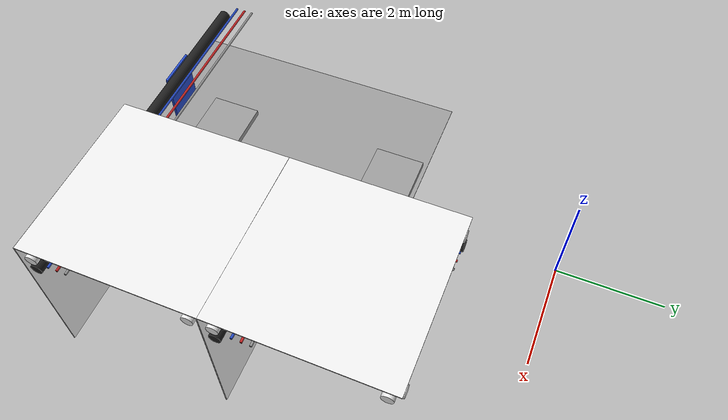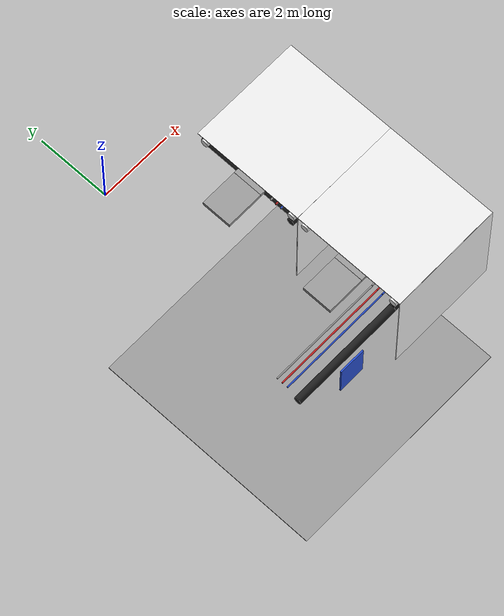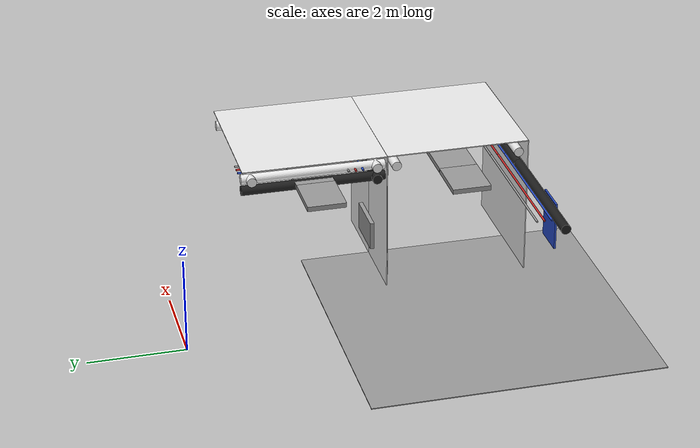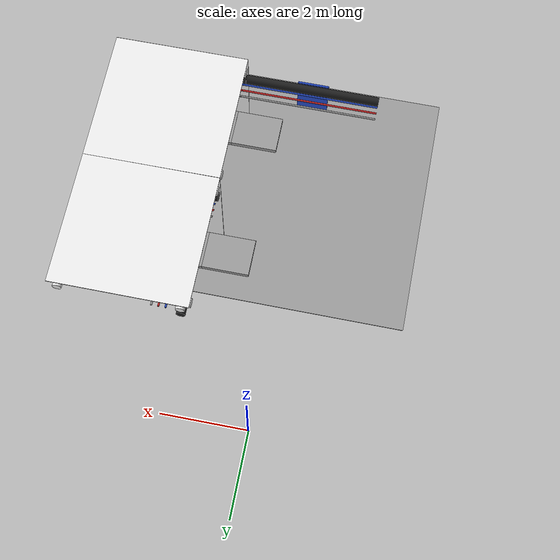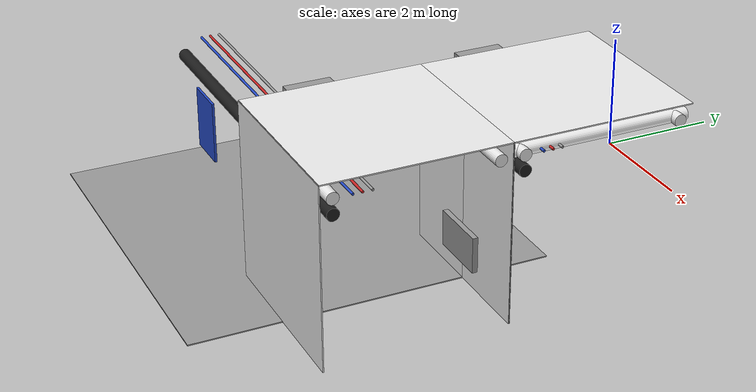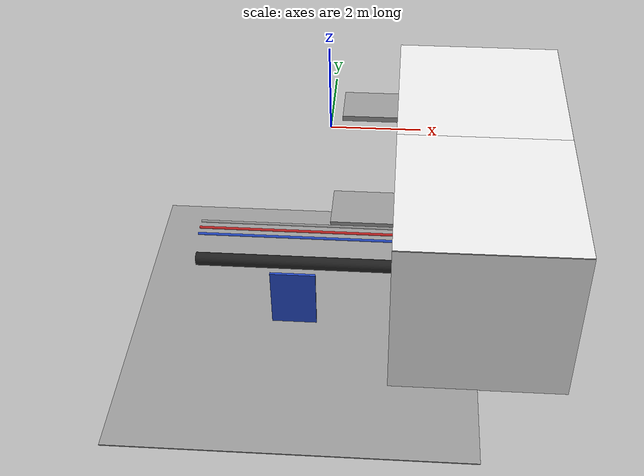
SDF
<sdf version="1.6">
 <world name="default">
  <model name="wall_front_1_-1_0_2">
   <static>1</static>
   <pose>3.0 -4.5 1.5 0.0 0.0 3.14</pose>
   <link name="link">
    <collision name="collision"><geometry><box><size>3.0 0.02 3.0</size></box></geometry></collision>
    <visual name="visual">
     <material>
      <script><name>Gazebo/White</name><uri>file://media/materials/scripts/gazebo.material</uri></script>
     </material>
     <geometry><box><size>3.0 0.02 3.0</size></box></geometry>
    </visual>
   </link>
  </model>
  <model name="wall_top_1_-1_0_2">
   <static>1</static>
   <pose>3.0 -3.0 3.0 1.57 0.0 3.14</pose>
   <link name="link">
    <collision name="collision"><geometry><box><size>3.0 0.02 3.0</size></box></geometry></collision>
    <visual name="visual">
     <material>
      <script><name>Gazebo/White</name><uri>file://media/materials/scripts/gazebo.material</uri></script>
     </material>
     <geometry><box><size>3.0 0.02 3.0</size></box></geometry>
    </visual>
   </link>
  </model>
  <model name="ceiling_1_1_-1_1_2">
   <pose>2.0 -3.0 2.55 0.0 0.0 4.71</pose>
   <link name="link_1">
    <visual name="visual">
     <geometry><box><size>0.8 1 0.1</size></box></geometry>
     <material>
      <script><uri>file://media/materials/scripts/gazebo.material</uri><name>Gazebo/Grey</name></script>
     </material>
    </visual>
    <collision name="collision"><geometry><box><size>0.8 1 0.1</size></box></geometry></collision>
   </link>
   <static>1</static>
  </model>
  <model name="white_pipe_left_1_-1_0_2">
   <static>1</static>
   <pose>3.0 -3.0 2.76 0.0 0.0 3.14</pose>
   <link name="link_0">
    <visual name="visual">
     <pose>-1.3 0 0 1.57 0 0</pose>
     <geometry><cylinder><radius>0.1</radius><length>3.0</length></cylinder></geometry>
     <material>
      <script><uri>file://media/materials/scripts/gazebo.material</uri><name>Gazebo/White</name></script>
     </material>
    </visual>
    <collision name="collision">
     <pose>-1.3 0 0 1.57 0 0</pose>
     <geometry><cylinder><radius>0.1</radius><length>3.0</length></cylinder></geometry>
    </collision>
   </link>
  </model>
  <model name="white_pipe_right_1_-1_0_2">
   <static>1</static>
   <pose>3.0 -3.0 2.76 0.0 0.0 3.14</pose>
   <link name="link_0">
    <visual name="visual">
     <pose>1.3 0 0 1.57 0 0</pose>
     <geometry><cylinder><radius>0.1</radius><length>3.0</length></cylinder></geometry>
     <material>
      <script><uri>file://media/materials/scripts/gazebo.material</uri><name>Gazebo/White</name></script>
     </material>
    </visual>
    <collision name="collision">
     <pose>1.3 0 0 1.57 0 0</pose>
     <geometry><cylinder><radius>0.1</radius><length>3.0</length></cylinder></geometry>
    </collision>
   </link>
  </model>
  <model name="black_pipe_right_1_-1_0_2">
   <static>1</static>
   <pose>3.0 -3.0 2.76 0.0 0.0 3.14</pose>
   <link name="link_0">
    <visual name="visual">
     <pose>1.3 0 -0.25 1.57 0 0</pose>
     <geometry><cylinder><radius>0.1</radius><length>3.0</length></cylinder></geometry>
     <material>
      <script><uri>file://media/materials/scripts/gazebo.material</uri><name>Gazebo/Black</name></script>
     </material>
    </visual>
    <collision name="collision">
     <pose>1.3 0 -0.25 1.57 0 0</pose>
     <geometry><cylinder><radius>0.1</radius><length>3.0</length></cylinder></geometry>
    </collision>
   </link>
  </model>
  <model name="grey_pipe_right_1_-1_0_2">
   <static>1</static>
   <pose>3.0 -3.0 2.76 0.0 0.0 3.14</pose>
   <link name="link_0">
    <visual name="visual">
     <pose>0.7 0 0 1.57 0 0</pose>
     <geometry><cylinder><radius>0.02</radius><length>3.0</length></cylinder></geometry>
     <material>
      <script><uri>file://media/materials/scripts/gazebo.material</uri><name>Gazebo/Grey</name></script>
     </material>
    </visual>
    <collision name="collision">
     <pose>0.7 0 0 1.57 0 0</pose>
     <geometry><cylinder><radius>0.02</radius><length>3.0</length></cylinder></geometry>
    </collision>
   </link>
  </model>
  <model name="red_pipe_right_1_-1_0_2">
   <static>1</static>
   <pose>3.0 -3.0 2.76 0.0 0.0 3.14</pose>
   <link name="link_0">
    <visual name="visual">
     <pose>0.85 0 0 1.57 0 0</pose>
     <geometry><cylinder><radius>0.02</radius><length>3.0</length></cylinder></geometry>
     <material>
      <script><uri>file://media/materials/scripts/gazebo.material</uri><name>Gazebo/Red</name></script>
     </material>
    </visual>
    <collision name="collision">
     <pose>0.85 0 0 1.57 0 0</pose>
     <geometry><cylinder><radius>0.02</radius><length>3.0</length></cylinder></geometry>
    </collision>
   </link>
  </model>
  <model name="blue_pipe_right_1_-1_0_2">
   <static>1</static>
   <pose>3.0 -3.0 2.76 0.0 0.0 3.14</pose>
   <link name="link_0">
    <visual name="visual">
     <pose>1 0 0 1.57 0 0</pose>
     <geometry><cylinder><radius>0.02</radius><length>3.0</length></cylinder></geometry>
     <material>
      <script><uri>file://media/materials/scripts/gazebo.material</uri><name>Gazebo/Blue</name></script>
     </material>
    </visual>
    <collision name="collision">
     <pose>1 0 0 1.57 0 0</pose>
     <geometry><cylinder><radius>0.02</radius><length>3.0</length></cylinder></geometry>
    </collision>
   </link>
  </model>
  <model name="white_pipe_left_1_1_-1_0_2">
   <static>1</static>
   <pose>3.0 -3.0 2.76 0.0 0.0 4.71</pose>
   <link name="link_0">
    <visual name="visual">
     <pose>-1.3 0 0 1.57 0 0</pose>
     <geometry><cylinder><radius>0.1</radius><length>3.0</length></cylinder></geometry>
     <material>
      <script><uri>file://media/materials/scripts/gazebo.material</uri><name>Gazebo/White</name></script>
     </material>
    </visual>
    <collision name="collision">
     <pose>-1.3 0 0 1.57 0 0</pose>
     <geometry><cylinder><radius>0.1</radius><length>3.0</length></cylinder></geometry>
    </collision>
   </link>
  </model>
  <model name="white_pipe_right_1_1_-1_0_2">
   <static>1</static>
   <pose>3.0 -3.0 2.76 0.0 0.0 4.71</pose>
   <link name="link_0">
    <visual name="visual">
     <pose>1.3 0 0 1.57 0 0</pose>
     <geometry><cylinder><radius>0.1</radius><length>3.0</length></cylinder></geometry>
     <material>
      <script><uri>file://media/materials/scripts/gazebo.material</uri><name>Gazebo/White</name></script>
     </material>
    </visual>
    <collision name="collision">
     <pose>1.3 0 0 1.57 0 0</pose>
     <geometry><cylinder><radius>0.1</radius><length>3.0</length></cylinder></geometry>
    </collision>
   </link>
  </model>
  <model name="black_pipe_right_1_1_-1_0_2">
   <static>1</static>
   <pose>3.0 -3.0 2.76 0.0 0.0 4.71</pose>
   <link name="link_0">
    <visual name="visual">
     <pose>1.3 0 -0.25 1.57 0 0</pose>
     <geometry><cylinder><radius>0.1</radius><length>3.0</length></cylinder></geometry>
     <material>
      <script><uri>file://media/materials/scripts/gazebo.material</uri><name>Gazebo/Black</name></script>
     </material>
    </visual>
    <collision name="collision">
     <pose>1.3 0 -0.25 1.57 0 0</pose>
     <geometry><cylinder><radius>0.1</radius><length>3.0</length></cylinder></geometry>
    </collision>
   </link>
  </model>
  <model name="grey_pipe_right_1_1_-1_0_2">
   <static>1</static>
   <pose>3.0 -3.0 2.76 0.0 0.0 4.71</pose>
   <link name="link_0">
    <visual name="visual">
     <pose>0.7 0 0 1.57 0 0</pose>
     <geometry><cylinder><radius>0.02</radius><length>3.0</length></cylinder></geometry>
     <material>
      <script><uri>file://media/materials/scripts/gazebo.material</uri><name>Gazebo/Grey</name></script>
     </material>
    </visual>
    <collision name="collision">
     <pose>0.7 0 0 1.57 0 0</pose>
     <geometry><cylinder><radius>0.02</radius><length>3.0</length></cylinder></geometry>
    </collision>
   </link>
  </model>
  <model name="red_pipe_right_1_1_-1_0_2">
   <static>1</static>
   <pose>3.0 -3.0 2.76 0.0 0.0 4.71</pose>
   <link name="link_0">
    <visual name="visual">
     <pose>0.85 0 0 1.57 0 0</pose>
     <geometry><cylinder><radius>0.02</radius><length>3.0</length></cylinder></geometry>
     <material>
      <script><uri>file://media/materials/scripts/gazebo.material</uri><name>Gazebo/Red</name></script>
     </material>
    </visual>
    <collision name="collision">
     <pose>0.85 0 0 1.57 0 0</pose>
     <geometry><cylinder><radius>0.02</radius><length>3.0</length></cylinder></geometry>
    </collision>
   </link>
  </model>
  <model name="blue_pipe_right_1_1_-1_0_2">
   <static>1</static>
   <pose>3.0 -3.0 2.76 0.0 0.0 4.71</pose>
   <link name="link_0">
    <visual name="visual">
     <pose>1 0 0 1.57 0 0</pose>
     <geometry><cylinder><radius>0.02</radius><length>3.0</length></cylinder></geometry>
     <material>
      <script><uri>file://media/materials/scripts/gazebo.material</uri><name>Gazebo/Blue</name></script>
     </material>
    </visual>
    <collision name="collision">
     <pose>1 0 0 1.57 0 0</pose>
     <geometry><cylinder><radius>0.02</radius><length>3.0</length></cylinder></geometry>
    </collision>
   </link>
  </model>
  <model name="panel_1_-1_0_2">
   <static>1</static>
   <pose>3.0 -4.5 0.66 0.0 0.0 4.71</pose>
   <link name="link">
    <collision name="collision"><geometry><box><size>0.2 1 0.6</size></box></geometry></collision>
    <visual name="visual">
     <material>
      <script><name>Gazebo/Grey</name><uri>file://media/materials/scripts/gazebo.material</uri></script>
     </material>
     <geometry><box><size>0.2 1 0.6</size></box></geometry>
    </visual>
   </link>
  </model>
  <model name="ceiling_1_0_-1_0_3">
   <pose>1.0 -3.0 2.55 0.0 0.0 1.57</pose>
   <link name="link_1">
    <visual name="visual">
     <geometry><box><size>0.8 1 0.1</size></box></geometry>
     <material>
      <script><uri>file://media/materials/scripts/gazebo.material</uri><name>Gazebo/Grey</name></script>
     </material>
    </visual>
    <collision name="collision"><geometry><box><size>0.8 1 0.1</size></box></geometry></collision>
   </link>
   <static>1</static>
  </model>
  <model name="ceiling_1_0_-2_1_3">
   <pose>1.0 -6.0 2.55 0.0 0.0 4.71</pose>
   <link name="link_1">
    <visual name="visual">
     <geometry><box><size>0.8 1 0.1</size></box></geometry>
     <material>
      <script><uri>file://media/materials/scripts/gazebo.material</uri><name>Gazebo/Grey</name></script>
     </material>
    </visual>
    <collision name="collision"><geometry><box><size>0.8 1 0.1</size></box></geometry></collision>
   </link>
   <static>1</static>
  </model>
  <model name="black_pipe_right_1_0_-2_0_3">
   <static>1</static>
   <pose>0.0 -6.0 2.76 0.0 0.0 4.71</pose>
   <link name="link_0">
    <visual name="visual">
     <pose>1.3 0 -0.25 1.57 0 0</pose>
     <geometry><cylinder><radius>0.1</radius><length>3.0</length></cylinder></geometry>
     <material>
      <script><uri>file://media/materials/scripts/gazebo.material</uri><name>Gazebo/Black</name></script>
     </material>
    </visual>
    <collision name="collision">
     <pose>1.3 0 -0.25 1.57 0 0</pose>
     <geometry><cylinder><radius>0.1</radius><length>3.0</length></cylinder></geometry>
    </collision>
   </link>
  </model>
  <model name="grey_pipe_right_1_0_-2_0_3">
   <static>1</static>
   <pose>0.0 -6.0 2.76 0.0 0.0 4.71</pose>
   <link name="link_0">
    <visual name="visual">
     <pose>0.7 0 0 1.57 0 0</pose>
     <geometry><cylinder><radius>0.02</radius><length>3.0</length></cylinder></geometry>
     <material>
      <script><uri>file://media/materials/scripts/gazebo.material</uri><name>Gazebo/Grey</name></script>
     </material>
    </visual>
    <collision name="collision">
     <pose>0.7 0 0 1.57 0 0</pose>
     <geometry><cylinder><radius>0.02</radius><length>3.0</length></cylinder></geometry>
    </collision>
   </link>
  </model>
  <model name="red_pipe_right_1_0_-2_0_3">
   <static>1</static>
   <pose>0.0 -6.0 2.76 0.0 0.0 4.71</pose>
   <link name="link_0">
    <visual name="visual">
     <pose>0.85 0 0 1.57 0 0</pose>
     <geometry><cylinder><radius>0.02</radius><length>3.0</length></cylinder></geometry>
     <material>
      <script><uri>file://media/materials/scripts/gazebo.material</uri><name>Gazebo/Red</name></script>
     </material>
    </visual>
    <collision name="collision">
     <pose>0.85 0 0 1.57 0 0</pose>
     <geometry><cylinder><radius>0.02</radius><length>3.0</length></cylinder></geometry>
    </collision>
   </link>
  </model>
  <model name="blue_pipe_right_1_0_-2_0_3">
   <static>1</static>
   <pose>0.0 -6.0 2.76 0.0 0.0 4.71</pose>
   <link name="link_0">
    <visual name="visual">
     <pose>1 0 0 1.57 0 0</pose>
     <geometry><cylinder><radius>0.02</radius><length>3.0</length></cylinder></geometry>
     <material>
      <script><uri>file://media/materials/scripts/gazebo.material</uri><name>Gazebo/Blue</name></script>
     </material>
    </visual>
    <collision name="collision">
     <pose>1 0 0 1.57 0 0</pose>
     <geometry><cylinder><radius>0.02</radius><length>3.0</length></cylinder></geometry>
    </collision>
   </link>
  </model>
  <model name="panel_0_-2_0_3">
   <static>1</static>
   <pose>0.0 -7.5 1.95 0.0 0.0 4.71</pose>
   <link name="link">
    <collision name="collision"><geometry><box><size>0.04 0.7 1</size></box></geometry></collision>
    <visual name="visual">
     <material>
      <script><name>Gazebo/Blue</name><uri>file://media/materials/scripts/gazebo.material</uri></script>
     </material>
     <geometry><box><size>0.04 0.7 1</size></box></geometry>
    </visual>
   </link>
  </model>
  <model name="wall_bottom_0_-2_0_3">
   <static>1</static>
   <pose>0.0 -6.0 0.0 0.0 0.0 3.14</pose>
   <link name="link">
    <collision name="collision"><geometry><box><size>6.0 6.0 0.02</size></box></geometry></collision>
    <visual name="visual">
     <material>
      <script><name>Gazebo/Grey</name><uri>file://media/materials/scripts/gazebo.material</uri></script>
     </material>
     <geometry><box><size>6.0 6.0 0.02</size></box></geometry>
    </visual>
   </link>
  </model>
  <model name="wall_right_1_-2_0_1">
   <static>1</static>
   <pose>3.0 -7.5 1.5 0.0 0.0 0.0</pose>
   <link name="link">
    <collision name="collision"><geometry><box><size>3.0 0.02 3.0</size></box></geometry></collision>
    <visual name="visual">
     <material>
      <script><name>Gazebo/White</name><uri>file://media/materials/scripts/gazebo.material</uri></script>
     </material>
     <geometry><box><size>3.0 0.02 3.0</size></box></geometry>
    </visual>
   </link>
  </model>
  <model name="wall_left_1_-2_0_1">
   <static>1</static>
   <pose>3.0 -4.5 1.5 0.0 0.0 0.0</pose>
   <link name="link">
    <collision name="collision"><geometry><box><size>3.0 0.02 3.0</size></box></geometry></collision>
    <visual name="visual">
     <material>
      <script><name>Gazebo/White</name><uri>file://media/materials/scripts/gazebo.material</uri></script>
     </material>
     <geometry><box><size>3.0 0.02 3.0</size></box></geometry>
    </visual>
   </link>
  </model>
  <model name="wall_top_1_-2_0_1">
   <static>1</static>
   <pose>3.0 -6.0 3.0 1.57 0.0 -1.57</pose>
   <link name="link">
    <collision name="collision"><geometry><box><size>3.0 0.02 3.0</size></box></geometry></collision>
    <visual name="visual">
     <material>
      <script><name>Gazebo/White</name><uri>file://media/materials/scripts/gazebo.material</uri></script>
     </material>
     <geometry><box><size>3.0 0.02 3.0</size></box></geometry>
    </visual>
   </link>
  </model>
  <model name="ceiling_1_1_-2_0_1">
   <pose>3.0 -6.0 2.55 0.0 0.0 -1.57</pose>
   <link name="link_1">
    <visual name="visual">
     <geometry><box><size>0.8 1 0.1</size></box></geometry>
     <material>
      <script><uri>file://media/materials/scripts/gazebo.material</uri><name>Gazebo/Grey</name></script>
     </material>
    </visual>
    <collision name="collision"><geometry><box><size>0.8 1 0.1</size></box></geometry></collision>
   </link>
   <static>1</static>
  </model>
  <model name="ceiling_1_1_-2_1_1">
   <pose>2.0 -6.0 2.55 0.0 0.0 -1.57</pose>
   <link name="link_1">
    <visual name="visual">
     <geometry><box><size>0.8 1 0.1</size></box></geometry>
     <material>
      <script><uri>file://media/materials/scripts/gazebo.material</uri><name>Gazebo/Grey</name></script>
     </material>
    </visual>
    <collision name="collision"><geometry><box><size>0.8 1 0.1</size></box></geometry></collision>
   </link>
   <static>1</static>
  </model>
  <model name="white_pipe_left_1_-2_0_1">
   <static>1</static>
   <pose>3.0 -6.0 2.76 0.0 0.0 -1.57</pose>
   <link name="link_0">
    <visual name="visual">
     <pose>-1.3 0 0 1.57 0 0</pose>
     <geometry><cylinder><radius>0.1</radius><length>3.0</length></cylinder></geometry>
     <material>
      <script><uri>file://media/materials/scripts/gazebo.material</uri><name>Gazebo/White</name></script>
     </material>
    </visual>
    <collision name="collision">
     <pose>-1.3 0 0 1.57 0 0</pose>
     <geometry><cylinder><radius>0.1</radius><length>3.0</length></cylinder></geometry>
    </collision>
   </link>
  </model>
  <model name="white_pipe_right_1_-2_0_1">
   <static>1</static>
   <pose>3.0 -6.0 2.76 0.0 0.0 -1.57</pose>
   <link name="link_0">
    <visual name="visual">
     <pose>1.3 0 0 1.57 0 0</pose>
     <geometry><cylinder><radius>0.1</radius><length>3.0</length></cylinder></geometry>
     <material>
      <script><uri>file://media/materials/scripts/gazebo.material</uri><name>Gazebo/White</name></script>
     </material>
    </visual>
    <collision name="collision">
     <pose>1.3 0 0 1.57 0 0</pose>
     <geometry><cylinder><radius>0.1</radius><length>3.0</length></cylinder></geometry>
    </collision>
   </link>
  </model>
  <model name="black_pipe_right_1_-2_0_1">
   <static>1</static>
   <pose>3.0 -6.0 2.76 0.0 0.0 -1.57</pose>
   <link name="link_0">
    <visual name="visual">
     <pose>1.3 0 -0.25 1.57 0 0</pose>
     <geometry><cylinder><radius>0.1</radius><length>3.0</length></cylinder></geometry>
     <material>
      <script><uri>file://media/materials/scripts/gazebo.material</uri><name>Gazebo/Black</name></script>
     </material>
    </visual>
    <collision name="collision">
     <pose>1.3 0 -0.25 1.57 0 0</pose>
     <geometry><cylinder><radius>0.1</radius><length>3.0</length></cylinder></geometry>
    </collision>
   </link>
  </model>
  <model name="grey_pipe_right_1_-2_0_1">
   <static>1</static>
   <pose>3.0 -6.0 2.76 0.0 0.0 -1.57</pose>
   <link name="link_0">
    <visual name="visual">
     <pose>0.7 0 0 1.57 0 0</pose>
     <geometry><cylinder><radius>0.02</radius><length>3.0</length></cylinder></geometry>
     <material>
      <script><uri>file://media/materials/scripts/gazebo.material</uri><name>Gazebo/Grey</name></script>
     </material>
    </visual>
    <collision name="collision">
     <pose>0.7 0 0 1.57 0 0</pose>
     <geometry><cylinder><radius>0.02</radius><length>3.0</length></cylinder></geometry>
    </collision>
   </link>
  </model>
  <model name="red_pipe_right_1_-2_0_1">
   <static>1</static>
   <pose>3.0 -6.0 2.76 0.0 0.0 -1.57</pose>
   <link name="link_0">
    <visual name="visual">
     <pose>0.85 0 0 1.57 0 0</pose>
     <geometry><cylinder><radius>0.02</radius><length>3.0</length></cylinder></geometry>
     <material>
      <script><uri>file://media/materials/scripts/gazebo.material</uri><name>Gazebo/Red</name></script>
     </material>
    </visual>
    <collision name="collision">
     <pose>0.85 0 0 1.57 0 0</pose>
     <geometry><cylinder><radius>0.02</radius><length>3.0</length></cylinder></geometry>
    </collision>
   </link>
  </model>
  <model name="blue_pipe_right_1_-2_0_1">
   <static>1</static>
   <pose>3.0 -6.0 2.76 0.0 0.0 -1.57</pose>
   <link name="link_0">
    <visual name="visual">
     <pose>1 0 0 1.57 0 0</pose>
     <geometry><cylinder><radius>0.02</radius><length>3.0</length></cylinder></geometry>
     <material>
      <script><uri>file://media/materials/scripts/gazebo.material</uri><name>Gazebo/Blue</name></script>
     </material>
    </visual>
    <collision name="collision">
     <pose>1 0 0 1.57 0 0</pose>
     <geometry><cylinder><radius>0.02</radius><length>3.0</length></cylinder></geometry>
    </collision>
   </link>
  </model>
 </world>
</sdf>
